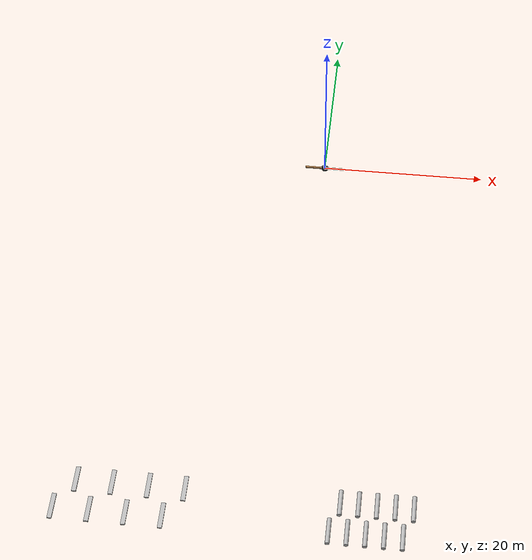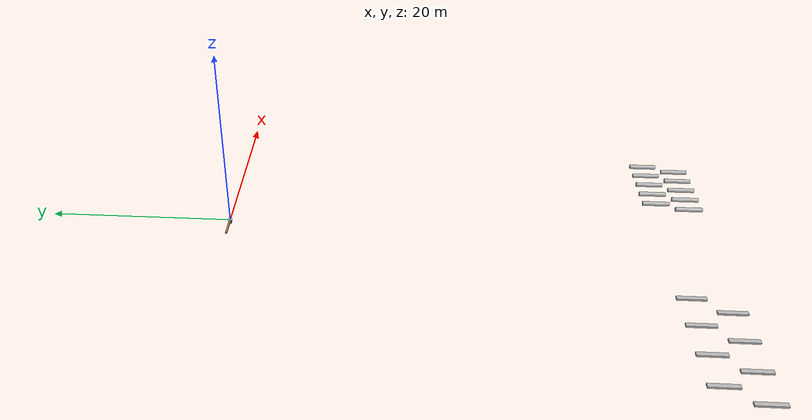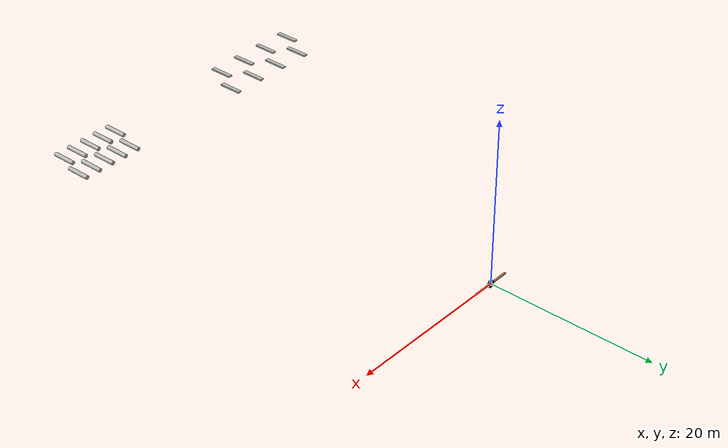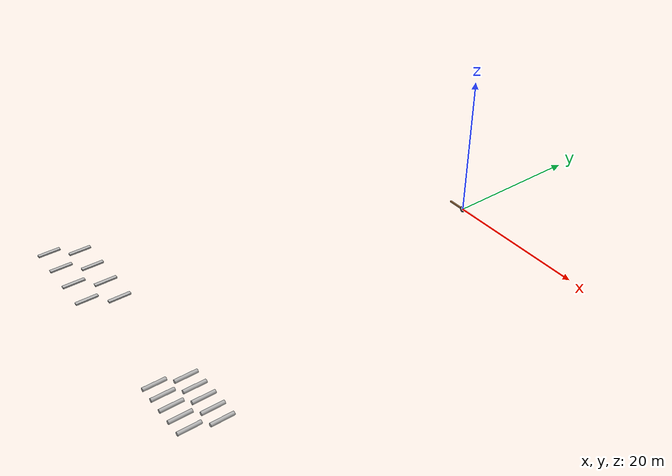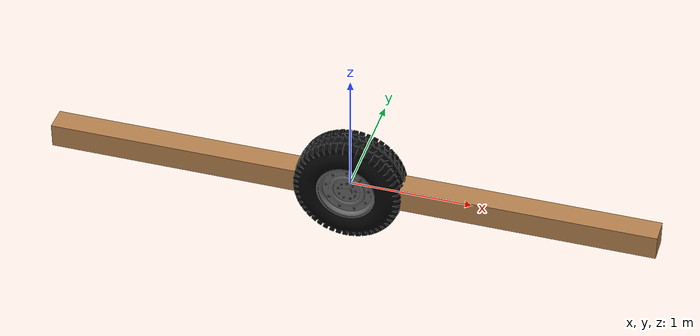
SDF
<sdf version="1.5">
 <world name="default">
  <scene>
   <sky>
    <material>Gazebo/CloudySky</material>
    <clouds><speed>5.0</speed><direction>1 0 0</direction></clouds>
   </sky>
  </scene>
  <include><uri>model://sun</uri></include>
  <model name="boxbumps">
   <link name="chassis">
    <pose>-25 -51.75 0.15 0 0 0</pose>
    <visual name="visual"><geometry><box><size>0.5 3 0.2</size></box></geometry></visual>
   </link>
   <link name="chassis">
    <pose>-23 -48.25 0.15 0 0 0</pose>
    <visual name="visual"><geometry><box><size>0.5 3 0.2</size></box></geometry></visual>
   </link>
   <link name="chassis">
    <pose>-21 -51.75 0.15 0 0 0</pose>
    <visual name="visual"><geometry><box><size>0.5 3 0.2</size></box></geometry></visual>
   </link>
   <link name="chassis">
    <pose>-19 -48.25 0.15 0 0 0</pose>
    <visual name="visual"><geometry><box><size>0.5 3 0.2</size></box></geometry></visual>
   </link>
   <link name="chassis">
    <pose>-17 -51.75 0.15 0 0 0</pose>
    <visual name="visual"><geometry><box><size>0.5 3 0.2</size></box></geometry></visual>
   </link>
   <link name="chassis">
    <pose>-15 -48.25 0.15 0 0 0</pose>
    <visual name="visual"><geometry><box><size>0.5 3 0.2</size></box></geometry></visual>
   </link>
   <link name="chassis">
    <pose>-13 -51.75 0.15 0 0 0</pose>
    <visual name="visual"><geometry><box><size>0.5 3 0.2</size></box></geometry></visual>
   </link>
   <link name="chassis">
    <pose>-11 -48.25 0.15 0 0 0</pose>
    <visual name="visual"><geometry><box><size>0.5 3 0.2</size></box></geometry></visual>
   </link>
  </model>
  <model name="cylinderBumps">
   <link name="link">
    <pose>5 -51.75 0.03 1.57 0 0</pose>
    <visual name="visual">
     <geometry><cylinder><radius>.25</radius><length>3.0</length></cylinder></geometry>
    </visual>
   </link>
   <link name="link">
    <pose>6 -48.25 0.03 1.57 0 0</pose>
    <visual name="visual">
     <geometry><cylinder><radius>.25</radius><length>3</length></cylinder></geometry>
    </visual>
   </link>
   <link name="link">
    <pose>7 -51.75 0.03 1.57 0 0</pose>
    <visual name="visual">
     <geometry><cylinder><radius>.25</radius><length>3</length></cylinder></geometry>
    </visual>
   </link>
   <link name="link">
    <pose>8 -48.25 0.03 1.57 0 0</pose>
    <visual name="visual">
     <geometry><cylinder><radius>.25</radius><length>3</length></cylinder></geometry>
    </visual>
   </link>
   <link name="link">
    <pose>9 -51.75 0.03 1.57 0 0</pose>
    <visual name="visual">
     <geometry><cylinder><radius>.25</radius><length>3</length></cylinder></geometry>
    </visual>
   </link>
   <link name="link">
    <pose>10 -48.25 0.03 1.57 0 0</pose>
    <visual name="visual">
     <geometry><cylinder><radius>.25</radius><length>3</length></cylinder></geometry>
    </visual>
   </link>
   <link name="link">
    <pose>11 -51.75 0.03 1.57 0 0</pose>
    <visual name="visual">
     <geometry><cylinder><radius>.25</radius><length>3</length></cylinder></geometry>
    </visual>
   </link>
   <link name="link">
    <pose>12 -48.25 0.03 1.57 0 0</pose>
    <visual name="visual">
     <geometry><cylinder><radius>.25</radius><length>3</length></cylinder></geometry>
    </visual>
   </link>
   <link name="link">
    <pose>13 -51.75 0.03 1.57 0 0</pose>
    <visual name="visual">
     <geometry><cylinder><radius>.25</radius><length>3</length></cylinder></geometry>
    </visual>
   </link>
   <link name="link">
    <pose>14 -48.25 0.03 1.57 0 0</pose>
    <visual name="visual">
     <geometry><cylinder><radius>.25</radius><length>3</length></cylinder></geometry>
    </visual>
   </link>
  </model>
  <model name="wheel1">
   <link name="link">
    <visual name="visual">
     <geometry><mesh><uri>file://wheel_R.dae</uri><scale>1.0 1.0 1.0</scale></mesh></geometry>
    </visual>
   </link>
  </model>
  <model name="wheel2">
   <link name="link">
    <visual name="visual">
     <geometry><mesh><uri>file://wheel_R.dae</uri><scale>1.0 1.0 1.0</scale></mesh></geometry>
    </visual>
   </link>
  </model>
  <model name="wheel3">
   <link name="link">
    <visual name="visual">
     <geometry><mesh><uri>file://wheel_R.dae</uri><scale>1.0 1.0 1.0</scale></mesh></geometry>
    </visual>
   </link>
  </model>
  <model name="wheel4">
   <link name="link">
    <visual name="visual">
     <geometry><mesh><uri>file://wheel_R.dae</uri><scale>1.0 1.0 1.0</scale></mesh></geometry>
    </visual>
   </link>
  </model>
  <model name="log0">
   <link name="link">
    <visual name="vis">
     <geometry><box><size>5 .2 .2</size></box></geometry>
     <material><script><uri>file://../data/gazono.material</uri><name>Gazebo/Wood1</name></script></material>
    </visual>
   </link>
  </model>
  <model name="log1">
   <link name="link">
    <visual name="vis">
     <geometry><box><size>5 .2 .2</size></box></geometry>
     <material><script><uri>file://../data/gazono.material</uri><name>Gazebo/Wood1</name></script></material>
    </visual>
   </link>
  </model>
  <model name="log2">
   <link name="link">
    <visual name="vis">
     <geometry><box><size>5 .2 .2</size></box></geometry>
     <material><script><uri>file://../data/gazono.material</uri><name>Gazebo/Wood1</name></script></material>
    </visual>
   </link>
  </model>
  <model name="log3">
   <link name="link">
    <visual name="vis">
     <geometry><box><size>5 .2 .2</size></box></geometry>
     <material><script><uri>file://../data/gazono.material</uri><name>Gazebo/Wood1</name></script></material>
    </visual>
   </link>
  </model>
  <model name="log4">
   <link name="link">
    <visual name="vis">
     <geometry><box><size>5 .2 .2</size></box></geometry>
     <material><script><uri>file://../data/gazono.material</uri><name>Gazebo/Wood1</name></script></material>
    </visual>
   </link>
  </model>
  <model name="log5">
   <link name="link">
    <visual name="vis">
     <geometry><box><size>5 .2 .2</size></box></geometry>
     <material><script><uri>file://../data/gazono.material</uri><name>Gazebo/Wood1</name></script></material>
    </visual>
   </link>
  </model>
  <model name="log6">
   <link name="link">
    <visual name="vis">
     <geometry><box><size>5 .2 .2</size></box></geometry>
     <material><script><uri>file://../data/gazono.material</uri><name>Gazebo/Wood1</name></script></material>
    </visual>
   </link>
  </model>
  <model name="log7">
   <link name="link">
    <visual name="vis">
     <geometry><box><size>5 .2 .2</size></box></geometry>
     <material><script><uri>file://../data/gazono.material</uri><name>Gazebo/Wood1</name></script></material>
    </visual>
   </link>
  </model>
  <model name="log8">
   <link name="link">
    <visual name="vis">
     <geometry><box><size>5 .2 .2</size></box></geometry>
     <material><script><uri>file://../data/gazono.material</uri><name>Gazebo/Wood1</name></script></material>
    </visual>
   </link>
  </model>
  <model name="log9">
   <link name="link">
    <visual name="vis">
     <geometry><box><size>5 .2 .2</size></box></geometry>
     <material><script><uri>file://../data/gazono.material</uri><name>Gazebo/Wood1</name></script></material>
    </visual>
   </link>
  </model>
  <plugin name="gazonoVehicle" filename="libgazonoVehicle.so"/>
 </world>
</sdf>
